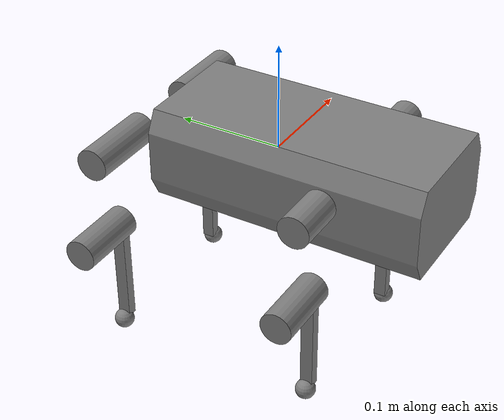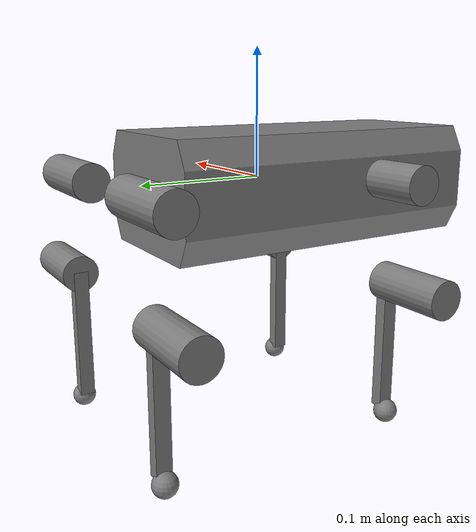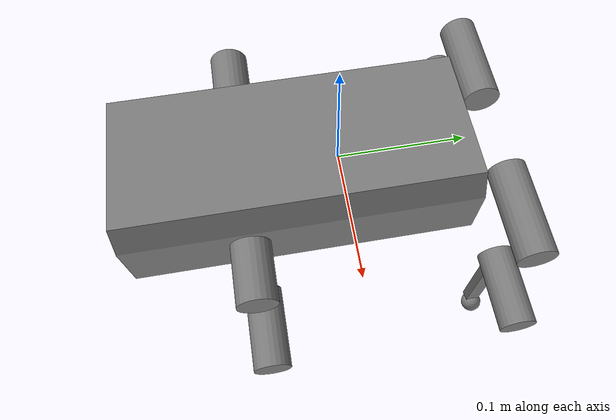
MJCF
<mujoco model="pupper_v2_dji">
  <compiler angle="radian" meshdir="meshes/"/>

  <asset>
    <mesh name="Cube.003" content_type="model/obj" file="Cube.003.obj"/>
  </asset>

  <worldbody>
    <body name="pupper_v2_dji_chassis">
      <inertial pos="0 -0.048 -0.00964" quat="0.499924 0.500153 -0.497855 0.50206" mass="0.991" diaginertia="0.00678008 0.00626009 0.00174983"/>
      <joint name="world_to_body" type="free"/>
      <geom name="Cube" pos="0 0.1 0" quat="1 0 0 0" type="mesh" mesh="Cube.003"/>
      <body name="leftFrontLeg" pos="0.047 -0.1015 0">
        <inertial pos="0.0139 0.0254 0" quat="0.5 0.5 0.5 0.5" mass="0.106" diaginertia="6e-05 6e-05 2e-05"/>
        <joint name="leftFrontLegMotor" pos="0 0 0" axis="0 -1 0" range="-0.7854 0.7854"/>
        <geom name="Hip L" size="0.015 0.0375" pos="0.0235 0.0265 0" quat="0.499998 0.5 -0.500002 -0.5" type="cylinder"/>
        <body name="leftFrontUpperLeg" pos="0.0395 0.0265 0">
          <inertial pos="0.0172 0 -0.061" quat="0.707107 0 0 0.707107" mass="0.142" diaginertia="0.00016 0.00014 3e-05"/>
          <joint name="leftFrontUpperLegMotor" pos="0 0 0" axis="1 0 0" range="-1.309 4.45059"/>
          <geom name="Upper Leg - Pupper 2.1 v57" size="0.015 0.0325" pos="0.0169 0 -0.08" quat="0.499998 0.5 0.500002 0.5" type="cylinder"/>
          <body name="leftFrontLowerLeg" pos="-0.004 0 -0.08" quat="1.32679e-06 0 0 1">
            <inertial pos="0.0055706 -0.000748031 -0.065916" quat="0.776224 3.90663e-05 3.17301e-05 0.630458" mass="0.0381" diaginertia="0.000200196 0.000200195 4.00013e-05"/>
            <joint name="leftFrontLowerLegMotor" pos="0 0 0" axis="-1 0 0" range="-2.87979 2.87979"/>
            <geom name="Lower Leg L" size="0.004755 0.006 0.05379" pos="0.00699 0 -0.05223" type="box"/>
            <geom name="Sphere.003" size="0.0095" pos="0.002 0 -0.11" quat="1.32679e-06 0 0 -1"/>
          </body>
        </body>
      </body>
      <body name="leftRearLeg" pos="0.047 0.0985 0">
        <inertial pos="0.0139 0.0254 0" quat="0.5 0.5 0.5 0.5" mass="0.106" diaginertia="6e-05 6e-05 2e-05"/>
        <joint name="leftRearLegMotor" pos="0 0 0" axis="0 -1 0" range="-0.7854 0.7854"/>
        <geom size="0.015 0.0375" pos="0.0235 0.0265 0" quat="0.499998 0.5 -0.500002 -0.5" type="cylinder"/>
        <body name="leftRearUpperLeg" pos="0.0395 0.0265 0">
          <inertial pos="0.0172 0 -0.061" quat="0.707107 0 0 0.707107" mass="0.142" diaginertia="0.00016 0.00014 3e-05"/>
          <joint name="leftRearUpperLegMotor" pos="0 0 0" axis="1 0 0" range="-1.309 4.45059"/>
          <geom size="0.015 0.0325" pos="0.0169 0 -0.08" quat="0.499998 0.5 0.500002 0.5" type="cylinder"/>
          <body name="leftRearLowerLeg" pos="-0.004 0 -0.08" quat="1.32679e-06 0 0 1">
            <inertial pos="0.0055706 -0.000748031 -0.065916" quat="0.776224 3.90663e-05 3.17301e-05 0.630458" mass="0.0381" diaginertia="0.000200196 0.000200195 4.00013e-05"/>
            <joint name="leftRearLowerLegMotor" pos="0 0 0" axis="-1 0 0" range="-2.87979 2.87979"/>
            <geom size="0.004755 0.006 0.05379" pos="0.00699 0 -0.05223" type="box"/>
            <geom name="Sphere" size="0.0095" pos="0.002 0 -0.11" quat="1.32679e-06 0 0 -1"/>
          </body>
        </body>
      </body>
      <body name="rightFrontLeg" pos="-0.047 -0.103 0" quat="1.32679e-06 0 0 -1">
        <inertial pos="0.0139 -0.0269 0" quat="0.5 0.5 0.5 0.5" mass="0.106" diaginertia="6e-05 6e-05 2e-05"/>
        <joint name="rightFrontLegMotor" pos="0 0 0" axis="0 1 0" range="-0.7854 0.7854"/>
        <geom name="Hip R" size="0.015 0.0375" pos="0.0235 -0.028 0" quat="0.499998 0.5 -0.500002 -0.5" type="cylinder"/>
        <body name="rightFrontUpperLeg" pos="0.0395 -0.028 0">
          <inertial pos="0.0172 0 -0.061" quat="0.707107 0 0 0.707107" mass="0.142" diaginertia="0.00016 0.00014 3e-05"/>
          <joint name="rightFrontUpperLegMotor" pos="0 0 0" axis="-1 0 0" range="-1.309 4.45059"/>
          <geom size="0.015 0.0325" pos="0.0169 0 -0.08" quat="0.499998 0.5 -0.500002 -0.5" type="cylinder"/>
          <body name="rightFrontLowerLeg" pos="-0.004 0 -0.08">
            <inertial pos="-0.00586982 -0.000748031 -0.065916" quat="0.63648 -3.4609e-05 -4.19395e-05 0.771293" mass="0.0381" diaginertia="0.000200196 0.000200195 4.00016e-05"/>
            <joint name="rightFrontLowerLegMotor" pos="0 0 0" axis="-1 0 0" range="-2.87979 2.87979"/>
            <geom name="Lower Leg R" size="0.004765 0.006 0.05379" pos="-0.00698 0 -0.05223" type="box"/>
            <geom name="Sphere.002" size="0.0095" pos="-0.002 0 -0.11" quat="1.32679e-06 0 0 1"/>
          </body>
        </body>
      </body>
      <body name="rightRearLeg" pos="-0.047 0.097 0" quat="1.32679e-06 0 0 -1">
        <inertial pos="0.0139 -0.0269 0" quat="0.5 0.5 0.5 0.5" mass="0.106" diaginertia="6e-05 6e-05 2e-05"/>
        <joint name="rightRearLegMotor" pos="0 0 0" axis="0 1 0" range="-0.7854 0.7854"/>
        <geom size="0.015 0.0375" pos="0.0235 -0.028 0" quat="0.499998 0.5 -0.500002 -0.5" type="cylinder"/>
        <body name="rightRearUpperLeg" pos="0.0395 -0.028 0">
          <inertial pos="0.0172 0 -0.061" quat="0.707107 0 0 0.707107" mass="0.142" diaginertia="0.00016 0.00014 3e-05"/>
          <joint name="rightRearUpperLegMotor" pos="0 0 0" axis="-1 0 0" range="-1.309 4.45059"/>
          <geom size="0.015 0.0325" pos="0.0169 0 -0.08" quat="0.499998 0.5 -0.500002 -0.5" type="cylinder"/>
          <body name="rightRearLowerLeg" pos="-0.004 0 -0.08">
            <inertial pos="-0.00586982 -0.000748031 -0.065916" quat="0.63648 -3.4609e-05 -4.19395e-05 0.771293" mass="0.0381" diaginertia="0.000200196 0.000200195 4.00016e-05"/>
            <joint name="rightRearLowerLegMotor" pos="0 0 0" axis="-1 0 0" range="-2.87979 2.87979"/>
            <geom size="0.004765 0.006 0.05379" pos="-0.00698 0 -0.05223" type="box"/>
            <geom name="Sphere.001" size="0.0095" pos="-0.002 0 -0.11" quat="1.32679e-06 0 0 1"/>
          </body>
        </body>
      </body>
    </body>
  </worldbody>
</mujoco>
